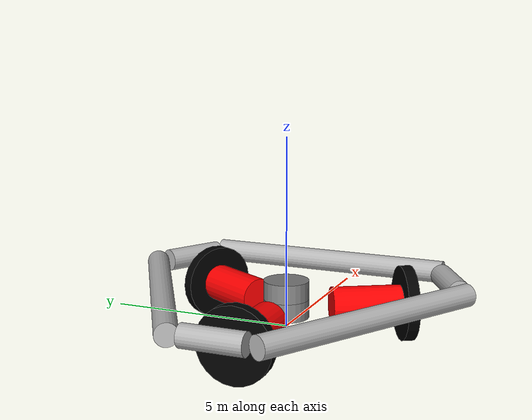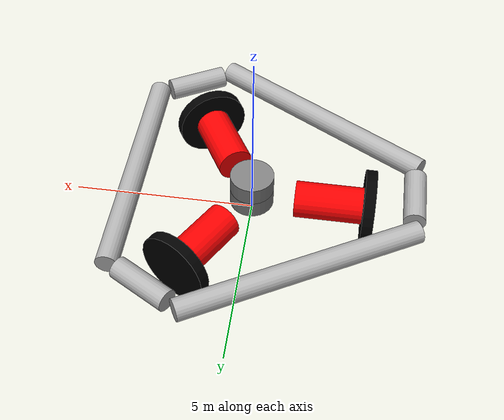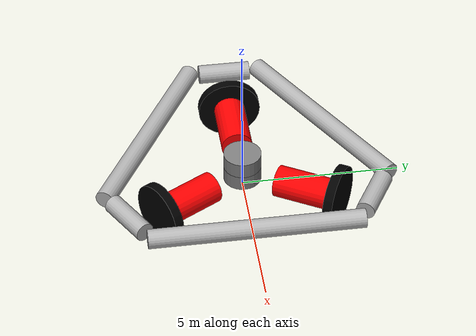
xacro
<?xml version="1.0"?>
<robot xmlns:xacro="http://www.ros.org/wiki/xacro"  name="trikey_light">

   <!-- Central Body -->
    <link name="base_link">
        <visual>
            <origin xyz="0.0 0.0 1" rpy="0.0 0.0 0.0"/>
            <geometry>
                <cylinder radius="0.6" length="0.5"/>
            </geometry>
            <material name="gray">
                <color rgba="0.5 0.5 0.5 1.0"/>
            </material>
        </visual>
        <collision>
            <origin xyz="0.0 0.0 1.2" rpy="0.0 0.0 0.0"/>
            <geometry>
                <cylinder radius="0.6" length="0.5"/>
            </geometry>
        </collision>
    </link>

<!-- Body Link (Raises Center of Mass)-->
    <link name="body_link">
        <inertial>
            <origin xyz="0.0 0.0 0" rpy="0.0 0.0 0.0"/>
            <mass value="20"/>
            <inertia ixx="2.0" ixy="0.0" ixz="0.0" iyy="2.0" iyz="0.0" izz="2.0"/>
        </inertial>
        <visual>
            <origin xyz="0.0 0.0 0" rpy="0.0 0.0 0.0"/>
            <geometry>
                <cylinder radius="0.6" length="0.5"/>
            </geometry>
            <material name="gray">
                <color rgba="0.5 0.5 0.5 1.0"/>
            </material>
        </visual>
        <collision>
            <origin xyz="0.0 0.0 0" rpy="0.0 0.0 0.0"/>
            <geometry>
                <cylinder radius="0.6" length="0.5"/>
            </geometry>
        </collision>
    </link>

<!-- Body to Center Joint -->
<joint name="center_joint" type="fixed">
    <origin xyz="0 0 0.5" rpy="0 0 0"/>
    <child link="body_link"/>
    <parent link="base_link"/>
</joint>

  <xacro:macro name="shaft_wheel" params="id x y rpy">
    <!-- Shaft -->
    <link name="shaft_link_${id}">
      <inertial>
        <origin xyz="0.0 1.2 1.0" rpy="1.5708 0.0 0.0"/>
        <mass value="5"/>
        <inertia ixx="1.333" ixy="0.0" ixz="0.0" iyy="0.0" iyz="0.0" izz="1.333"/>
      </inertial>
      <visual>
        <origin xyz="0.0 1.2 1.0" rpy="1.5708 0.0 0.0"/>
        <geometry>
          <cylinder radius="0.5" length="2"/>
        </geometry>
        <material name="red">
          <color rgba="1.0 0.0 0.0 1.0"/>
        </material>
      </visual>
      <collision>
        <origin xyz="0.0 1.2 1.0" rpy="1.5708 0.0 0.0"/>
        <geometry>
          <cylinder radius="0.5" length="2"/>
        </geometry>
      </collision>
    </link>

    <!-- Fixed joint attaching the shaft to the robot base -->
    <joint name="base_joint_${id}" type="fixed">
      <origin xyz="${x} ${y} -0.5" rpy="0.0 0.0 ${rpy}"/>
      <parent link="base_link"/>
      <child link="shaft_link_${id}"/>
    </joint>

    <!-- Wheel Link -->
    <link name="wheel_link_${id}">
      <inertial>
        <origin xyz="0.0 0.0 -0.2" rpy="0.0 0.0 0.0"/>
        <mass value="2"/>
        <inertia ixx="0.25" ixy="0.0" ixz="0.0" iyy="0.25" iyz="0.0" izz="0.5"/>
      </inertial>
      <visual>
        <origin xyz="0.0 0.0 -0.2" rpy="0.0 0.0 0.0"/>
        <geometry>
          <cylinder radius="1.0" length="0.3"/>
        </geometry>
        <material name="black">
          <color rgba="0.0 0.0 0.0 1.0"/>
        </material>
      </visual>
      <surface>
        <friction>
          <ode>
            <mu>10</mu>
            <mu2>0.1</mu2>
          </ode>
        </friction>
        <contact>
          <ode>
              <kp>1e5</kp>
              <kd>1e3</kd>
              <max_vel>2</max_vel>
              <min_depth>0.003</min_depth>
          </ode>
        </contact>
      </surface>
      <collision>
        <origin xyz="0.0 0.0 -0.2" rpy="0.0 0.0 0.0"/>
        <geometry>
          <cylinder radius="1.0" length="0.3"/>
        </geometry>
      </collision>
    </link>

    <!-- Continuous joint connecting the shaft to the wheel, with embedded FT sensor -->
    <joint name="wheel_joint_${id}" type="continuous">
      <origin xyz="0.0 2.0 1.0" rpy="1.57 0.0 0.0"/>
      <parent link="shaft_link_${id}"/>
      <child link="wheel_link_${id}"/>
      <axis xyz="0.0 0.0 1.0"/>
      <limit effort="100000000.0" velocity="10.0"/>
    <provideFeedback>true</provideFeedback>
      <physics>
            <provideFeedback>true</provideFeedback>
        </physics>
      <gazebo>
            <physics>
            <provideFeedback>true</provideFeedback>
            </physics>
            <provideFeedback>true</provideFeedback>
        <sensor type="force_torque" name="ft_sensor_wheel_${id}">
          <always_on>true</always_on>
          <update_rate>1000</update_rate>
          <force_torque>
            <frame>child</frame>
                        <measure_direction>child_to_parent</measure_direction>
          </force_torque>
        </sensor>
      </gazebo>
    </joint>

    <!-- Transmission referencing the continuous joint -->
    <transmission name="wheel_joint_transmission_${id}">
      <type>transmission_interface/SimpleTransmission</type>
      <joint name="wheel_joint_${id}">
        <hardwareInterface>hardware_interface/VelocityJointInterface</hardwareInterface>
      </joint>
      <actuator name="wheel_motor_${id}">
        <hardwareInterface>hardware_interface/VelocityJointInterface</hardwareInterface>
        <mechanicalReduction>1</mechanicalReduction>
      </actuator>
    </transmission>
    <gazebo reference="wheel_joint_${id}">
        <provideFeedback>true</provideFeedback>
    </gazebo>
  </xacro:macro>

  <!-- Instantiate three shaft/wheel assemblies at 0°, +120°, -120° -->
  <xacro:property name="r" value="-1"/>
  <!-- Angles in radians -->
  <xacro:property name="theta1" value="0.0"/>
  <xacro:property name="theta2" value="2.0943951"/>    <!-- 120 deg -->
  <xacro:property name="theta3" value="-2.0943951"/>   <!-- -120 deg -->
  <!-- Additional rotation if needed -->
  <xacro:property name="rotate90" value="1.5708"/>

  <xacro:shaft_wheel
      id="1"
      x="${r * cos(theta1)}"
      y="${r * sin(theta1)}"
      rpy="${theta1 + rotate90}"
  />
  <xacro:shaft_wheel
      id="2"
      x="${r * cos(theta2)}"
      y="${r * sin(theta2)}"
      rpy="${theta2 + rotate90}"
  />
  <xacro:shaft_wheel
      id="3"
      x="${r * cos(theta3)}"
      y="${r * sin(theta3)}"
      rpy="${theta3 + rotate90}"
  />

  <!-- Macro to add a cover bar for a wheel -->
<xacro:macro name="wheel_cover_bar" params="id pos_x pos_y pos_z rpy_x rpy_y rpy_z length">
  <link name="wheel_cover_${id}">
    <inertial>
      <origin xyz="0 0 0" rpy="0 0 0"/>
      <mass value="0.1"/>
      <inertia ixx="0.0001" ixy="0.0" ixz="0.0" iyy="0.0001" iyz="0.0" izz="0.0001"/>
    </inertial>
    <visual>
      <!-- The cylinder represents the bar cover. Its radius matches the roll cage (0.3) -->
      <origin xyz="0 0 0" rpy="0 0 0"/>
      <geometry>
        <cylinder radius="0.3" length="${length}"/>
      </geometry>
      <material name="cover_material">
        <color rgba="0.7 0.7 0.7 1.0"/>
      </material>
    </visual>
    <collision>
      <origin xyz="0 0 0" rpy="0 0 0"/>
      <geometry>
        <cylinder radius="0.3" length="${length}"/>
      </geometry>
    </collision>
  </link>

  <joint name="wheel_cover_joint_${id}" type="fixed">
    <origin xyz="${pos_x} ${pos_y} ${pos_z}" rpy="${rpy_x} ${rpy_y} ${rpy_z}"/>
    <parent link="base_link"/>
    <child link="wheel_cover_${id}"/>
  </joint>
</xacro:macro>

<xacro:wheel_cover_bar
    id="1"
    pos_x="-4.4" pos_y="0" pos_z="1"
    rpy_x="0" rpy_y="1.5708" rpy_z="1.5708"
    length="1.65"/>

<!-- Cover for Wheel 2 (located at (0.5,-0.866)) -->
<xacro:wheel_cover_bar
    id="2"
    pos_x="2.2" pos_y="-3.81" pos_z="1"
    rpy_x="0" rpy_y="1.5708" rpy_z="-2.61799"
    length="1.65"/>

<!-- Cover bar for Wheel 3 (connecting rollcage_23 and rollcage_31) -->
<xacro:wheel_cover_bar
    id="3"
    pos_x="2.2" pos_y="3.81" pos_z="1"
    rpy_x="0" rpy_y="1.5708" rpy_z="2.61799"
    length="1.65"/>

  <!-- Roll Cage Beam between wheel 1 and wheel 2 -->
  <link name="rollcage_12">
    <inertial>
      <origin xyz="0 0 0" rpy="0 0 0"/>
      <mass value="0.1"/>
      <inertia ixx="0.0001" ixy="0.0" ixz="0.0"
               iyy="0.0001" iyz="0.0" izz="0.0001"/>
    </inertial>
    <visual>
      <!-- Midpoint at (-0.25, -0.433, 0), rotated so the cylinder lies along the beam -->
      <origin xyz="-1.615 -2.79718 1" rpy="0 -1.5708 -0.5236"/>
      <geometry>
               <cylinder radius="0.3" length="6.7"/>

      </geometry>
      <material name="silver">
        <color rgba="0.7 0.7 0.7 1.0"/>
      </material>
    </visual>
    <collision>
      <origin xyz="-1.615 -2.79718 1" rpy="0 -1.5708 -0.5236"/>
      <geometry>
                <cylinder radius="0.3" length="6.7"/>

      </geometry>
    </collision>
  </link>
  <joint name="rollcage_joint_12" type="fixed">
    <origin xyz="0 0 0" rpy="0 0 0"/>
    <parent link="base_link"/>
    <child link="rollcage_12"/>
  </joint>

  <!-- Roll Cage Beam between wheel 2 and wheel 3 -->
  <link name="rollcage_23">
    <inertial>
      <origin xyz="0 0 0" rpy="0 0 0"/>
      <mass value="0.1"/>
      <inertia ixx="0.0001" ixy="0.0" ixz="0.0"
               iyy="0.0001" iyz="0.0" izz="0.0001"/>
    </inertial>
    <visual>
      <!-- Midpoint at (0.5, 0, 0); beam angle ψ = +1.5708 rad -->
      <origin xyz="3.23 0 1" rpy="0 -1.5708 1.5708"/>
      <geometry>
        <cylinder radius="0.3" length="6.7"/>
      </geometry>
      <material name="silver">
        <color rgba="0.7 0.7 0.7 1.0"/>
      </material>
    </visual>
    <collision>
      <origin xyz="3.23 0 1" rpy="0 -1.5708 1.5708"/>
      <geometry>
        <cylinder radius="0.3" length="6.5"/>
      </geometry>
    </collision>
  </link>
  <joint name="rollcage_joint_23" type="fixed">
    <origin xyz="0 0 0" rpy="0 0 0"/>
    <parent link="base_link"/>
    <child link="rollcage_23"/>
  </joint>

  <!-- Roll Cage Beam between wheel 3 and wheel 1 -->
  <link name="rollcage_31">
    <inertial>
      <origin xyz="0 0 0" rpy="0 0 0"/>
      <mass value="0.1"/>
      <inertia ixx="0.0001" ixy="0.0" ixz="0.0"
               iyy="0.0001" iyz="0.0" izz="0.0001"/>
    </inertial>
    <visual>
      <!-- Midpoint at (-0.25, 0.433, 0); beam angle ψ = -2.61799 rad -->
      <origin xyz="-1.615 2.79718 1" rpy="0 -1.5708 -2.61799"/>
      <geometry>
                <cylinder radius="0.3" length="6.7"/>

      </geometry>
      <material name="silver">
        <color rgba="0.7 0.7 0.7 1.0"/>
      </material>
    </visual>
    <collision>
      <origin xyz="-1.615 2.79718 1" rpy="0 -1.5708 -2.61799"/>
      <geometry>
                <cylinder radius="0.3" length="6.7"/>

      </geometry>
    </collision>
  </link>
  <joint name="rollcage_joint_31" type="fixed">
    <origin xyz="0 0 0" rpy="0 0 0"/>
    <parent link="base_link"/>
    <child link="rollcage_31"/>
  </joint>

  <gazebo>
      <provideFeedback>true</provideFeedback>
    <plugin name="gazebo_ros_control" filename="libgazebo_ros_control.so">
      <robotNamespace>/trikey_light</robotNamespace>
    </plugin>

    <!-- ros-noetic-gazebo-plugins -->

    <!-- FT sensor plugin for wheel 1 -->
    <plugin name="ft_sensor_plugin_1" filename="libgazebo_ros_ft_sensor.so">
      <ros>
        <namespace>/trikey_light</namespace>
        <remapping>~/ft : ft_sensor_1</remapping>
      </ros>
      <always_on>true</always_on>
      <update_rate>1000</update_rate>
            <frame>child</frame>
            <measure_direction>child_to_parent</measure_direction>
      <bodyName>wheel_link_1</bodyName>
      <jointName>wheel_joint_1</jointName>
      <sensorName>ft_sensor_wheel_1</sensorName>
      <topicName>ft_sensor_1_topic</topicName>
    </plugin>

    <!-- FT sensor plugin for wheel 2 -->
    <plugin name="ft_sensor_plugin_2" filename="libgazebo_ros_ft_sensor.so">
      <ros>
        <namespace>/trikey_light</namespace>
        <remapping>~/ft : ft_sensor_2</remapping>
      </ros>
      <always_on>true</always_on>
      <update_rate>1000</update_rate>
      <frame>child</frame>
                  <measure_direction>child_to_parent</measure_direction>
      <bodyName>wheel_link_2</bodyName>
      <jointName>wheel_joint_2</jointName>
      <sensorName>ft_sensor_wheel_2</sensorName>
      <topicName>ft_sensor_2_topic</topicName>
    </plugin>

    <!-- FT sensor plugin for wheel 3 -->
    <plugin name="ft_sensor_plugin_3" filename="libgazebo_ros_ft_sensor.so">
      <ros>
        <namespace>/trikey_light</namespace>
        <remapping>~/ft : ft_sensor_3</remapping>
      </ros>
      <always_on>true</always_on>
      <update_rate>1000</update_rate>
            <frame>child</frame>
            <measure_direction>child_to_parent</measure_direction>
      <bodyName>wheel_link_3</bodyName>
      <jointName>wheel_joint_3</jointName>
      <sensorName>ft_sensor_wheel_3</sensorName>
      <topicName>ft_sensor_3_topic</topicName>
    </plugin>

  </gazebo>

</robot>
